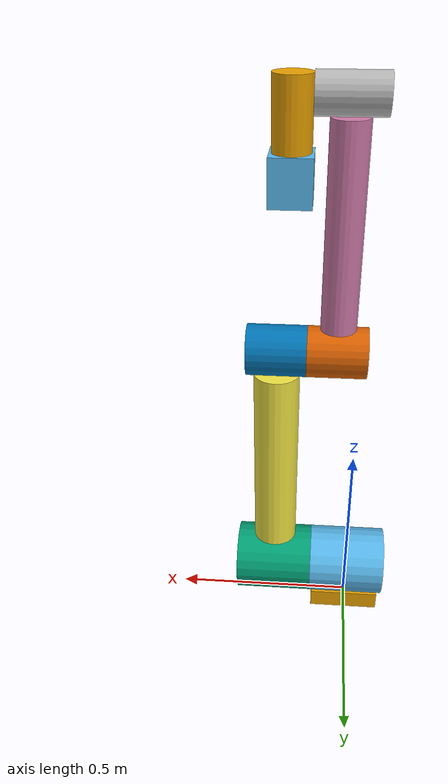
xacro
<?xml version="1.0" ?>

<robot name="myrobot" xmlns:xacro="https://www.ros.org/wiki/xacro">
	<!-- BGN include files -->
	<xacro:include filename="$(find myrobot_description)/urdf/links_joints.xacro"/>
	<xacro:include filename="$(find myrobot_description)/urdf/robot_parameters.xacro"/>
	<xacro:include filename="$(find myrobot_description)/urdf/gazebo.xacro" />
	<!-- END include files -->

	<!-- BGN robot_description -->
	<createBoxLink name="${base}"
					size="${base_size}"
					origin_xyz="0 0 0" origin_rpy="0 0 0"
					mass="${base_mass}" w="${base_width}" d="${base_depth}" h="${base_height}"/>

	<createRevoluteJoint name="${base}__${gG1}"
							axis_xyz="0 0 1" effort_limit="${gG_effort}"
							origin_xyz="0 0 ${base_height/2}" origin_rpy="0 0 0"
							parent="${base}" child="${gG1}" />

	<createCylinderLink name="${gG1}"
						radius="${gG_radius}" length="${gG_length}" mass="${gG_mass}"
						origin_xyz="0 0 ${gG_radius}" origin_rpy="0 1.57075 0" />

	<createRevoluteJoint name="${gG1}__${gG2}"
							axis_xyz="1 0 0" effort_limit="${gG_effort}"
							origin_xyz="${gG_length/2} 0 ${gG_radius}" origin_rpy="0 0 0"
							parent="${gG1}" child="${gG2}" />

	<createCylinderLink name="${gG2}"
						radius="${gG_radius}" length="${gG_length}" mass="${gG_mass}"
						origin_xyz="${gG_length/2} 0 0" origin_rpy="0 1.57075 0" />

	<createFixedJoint name="${gG2}__${uS}"
						origin_xyz="${gG_length/2} 0 ${gG_radius}" origin_rpy="0 0 0"
						parent="${gG2}" child="${uS}" />

	<createCylinderLink name="${uS}"
						radius="${uS_radius}" length="${uS_length}" mass="${uS_mass}"
						origin_xyz="0 0 ${uS_length/2}" origin_rpy="0 0 0" />

	<createFixedJoint name="${uS}__${mG1}"
						origin_xyz="0 0 ${uS_length}" origin_rpy="0 0 0"
						parent="${uS}" child="${mG1}" />

	<createCylinderLink name="${mG1}"
						radius="${mG_radius}" length="${mG_length}" mass="${mG_mass}"
						origin_xyz="0 0 ${mG_radius}" origin_rpy="0 1.57075 0" />

	<createRevoluteJoint name="${mG1}__${mG2}"
							axis_xyz="1 0 0" effort_limit="${mG_effort}"
							origin_xyz="${-mG_length/2} 0 ${mG_radius}" origin_rpy="0 0 0"
							parent="${mG1}" child="${mG2}" />

	<createCylinderLink name="${mG2}"
						radius="${mG_radius}" length="${mG_length}" mass="${mG_mass}"
						origin_xyz="${-mG_length/2} 0 0" origin_rpy="0 1.57075 0" />

	<createRevoluteJoint name="${mG2}__${oS}"
							axis_xyz="0 0 1" effort_limit="${mG_effort}"
							origin_xyz="${-mG_length/2} 0 ${mG_radius}" origin_rpy="0 0 0"
							parent="${mG2}" child="${oS}"/>

	<createCylinderLink name="${oS}"
						radius="${oS_radius}" length="${oS_length}" mass="${oS_mass}"
						origin_xyz="0 0 ${oS_length/2}" origin_rpy="0 0 0" />

	<createFixedJoint name="${oS}__${kG1}"
						origin_xyz="0 0 ${oS_length}" origin_rpy="0 0 0"
						parent="${oS}" child="${kG1}" />

	<createCylinderLink name="${kG1}"
						radius="${kG_radius}" length="${kG_length}" mass="${kG_mass}"
						origin_xyz="0 0 ${kG_radius}" origin_rpy="0 1.57075 0" />

	<createRevoluteJoint name="${kG1}__${kG2}"
							axis_xyz="1 0 0" effort_limit="${kG_effort}"
							origin_xyz="${kG_length/2} 0 ${kG_radius}" origin_rpy="0 0 0"
							parent="${kG1}" child="${kG2}" />

	<createCylinderLink name="${kG2}"
						radius="${kG_radius}" length="${kG_length}" mass="${kG_mass}"
						origin_xyz="${kG_radius} 0 ${-kG_length/4}" origin_rpy="0 0 0" />

	<createRevoluteJoint name="${kG2}__${eE}"
							axis_xyz="0 0 1" effort_limit="${kG_effort}"
							origin_xyz="${kG_radius} 0 ${-kG_length*3/4}" origin_rpy="0 0 0"
							parent="${kG2}" child="${eE}" />

	<createBoxLink name="${eE}"
					size="${eE_size}"
					origin_xyz="0 0 ${-eE_height/2}" origin_rpy="0 0 0"
					mass="${eE_mass}" w="${eE_width}" d="${eE_depth}" h="${eE_height}"/>

	<!-- END robot_description -->

</robot>

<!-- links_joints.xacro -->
<robot name="myrobot" xmlns:xacro="https://www.ros.org/wiki/xacro">

	<xacro:macro name="createBoxLink" params="name size origin_xyz origin_rpy mass w d h">
		<link name="${name}">
			<visual>
				<geometry> <box size="${size}" /> </geometry>
				<origin xyz="${origin_xyz}" rpy="${origin_rpy}" />
			</visual>
			<collision>
				<geometry> <box size="${size}" /> </geometry>
				<origin xyz="${origin_xyz}" rpy="${origin_rpy}" />
			</collision>
			<inertial>
				<mass value="${mass}" />
				<origin xyz="${origin_xyz}" rpy="${origin_rpy}" />
				<xacro:property name="ixx" value="${1/12* mass* (h*h + d*d)}" />
				<xacro:property name="iyy" value="${1/12* mass* (w*w + d*d)}" />
				<xacro:property name="izz" value="${1/12* mass* (w*w + h*h)}" />
				<inertia ixx="${ixx}" ixy="0" ixz="0" iyy="${iyy}" iyz="0" izz="${izz}"/>
			</inertial>
		</link>
	</xacro:macro>

	<xacro:macro name="createCylinderLink" params="name radius length origin_xyz origin_rpy mass">
		<link name="${name}">
			<visual>
				<geometry>
					<cylinder radius="${radius}" length="${length}" />
				</geometry>
				<origin xyz="${origin_xyz}" rpy="${origin_rpy}" />
			</visual>
			<collision>
				<geometry>
					<cylinder radius="${radius}" length="${length}" />
				</geometry>
				<origin xyz="${origin_xyz}" rpy="${origin_rpy}" />
			</collision>
			<inertial>
				<mass value="${mass}" />
				<origin xyz="${origin_xyz}" rpy="${origin_rpy}" />
				<xacro:property name="ixx" value="${1/12*mass* (3*(radius*radius) + length*length)}" />
				<xacro:property name="iyy" value="${1/12*mass* (3*(radius*radius) + length*length)}" />
				<xacro:property name="izz" value="${1/2*mass* radius*radius}" />
				<inertia ixx="${ixx}" ixy="0" ixz="0" iyy="${iyy}" iyz="0" izz="${izz}" />
			</inertial>
		</link>
	</xacro:macro>

	<xacro:macro name="createFixedJoint" params="name origin_xyz origin_rpy parent child">
		<joint name="${name}" type="fixed">
			<origin xyz="${origin_xyz}" rpy="${origin_rpy}"/>
			<parent link="${parent}" />
			<child link="${child}" />
		</joint>
	</xacro:macro>

	<xacro:macro name="createRevoluteJoint" params="name axis_xyz effort_limit origin_xyz origin_rpy parent child">
		<joint name="${name}" type="revolute">
			<axis xyz="${axis_xyz}" />
			<limit effort="${effort_limit}" lower="-3.14" upper="3.14" velocity="0.1"/>
			<origin xyz="${origin_xyz}" rpy="${origin_rpy}" />
			<parent link="${parent}"/>
			<child link="${child}"/>
		</joint>
		<transmission name="trans_${name}">
			<type>transmission_interface/SimpleTransmission</type>
			<joint name="${name}">
				<hardwareInterface>hardware_interface/EffortJointInterface</hardwareInterface>
			</joint>
			<actuator name="motor_${name}">
				<hardwareInterface>hardware_interface/EffortJointInterface</hardwareInterface>
				<mechanicalReduction>1</mechanicalReduction>
			</actuator>
		</transmission>
	</xacro:macro>

</robot>

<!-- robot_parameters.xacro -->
<robot name="myrobot" xmlns:xacro="https://www.ros.org/wiki/xacro">

	<!-- properties of the robot -->

	<xacro:property name="base" value="base_Link" />
	<xacro:property name="base_size" value="0.2 0.1 0.055" />
	<xacro:property name="base_width" value="0.2" />
	<xacro:property name="base_depth" value="0.1" />
	<xacro:property name="base_height" value="0.055" />
	<xacro:property name="base_mass" value="1000" />

	<!-- properties of the big motors/links -->
	<xacro:property name="gG1" value="gG_Rechts" />
	<xacro:property name="gG2" value="gG_Links" />
	<xacro:property name="gG_length" value="0.215" />
	<xacro:property name="gG_radius" value="0.0975" />
	<xacro:property name="gG_effort" value="300" />
	<xacro:property name="gG_mass" value="13" />

	<!-- properties of the middle motors/links -->
	<xacro:property name="mG1" value="mG_Links" />
	<xacro:property name="mG2" value="mG_Rechts" />
	<xacro:property name="mG_length" value="0.152" />
	<xacro:property name="mG_radius" value="0.065" />
	<xacro:property name="mG_effort" value="200" />
	<xacro:property name="mG_mass" value="5.269" />

	<!-- properties of the small motors/links -->
	<xacro:property name="kG1" value="kG_Rechts" />
	<xacro:property name="kG2" value="kG_Links" />
	<xacro:property name="kG_length" value="0.158" />
	<xacro:property name="kG_radius" value="0.045" />
	<xacro:property name="kG_effort" value="100" />
	<xacro:property name="kG_mass" value="2.754" />

	<!-- properties of lower & upper arm and endeffector -->
	<xacro:property name="uS" value="unterSchwinge" />
	<xacro:property name="uS_length" value="0.542" />
	<xacro:property name="uS_radius" value="0.06" />
	<xacro:property name="uS_mass" value="3.395" />

	<xacro:property name="oS" value="oberSchwinge" />
	<xacro:property name="oS_length" value="0.4875" />
	<xacro:property name="oS_radius" value="0.045" />
	<xacro:property name="oS_mass" value="1.62" />

	<xacro:property name="eE" value="endEffektor" />
	<xacro:property name="eE_size" value="0.1 0.1 0.11" />
	<xacro:property name="eE_width" value="0.1" />
	<xacro:property name="eE_depth" value="0.1" />
	<xacro:property name="eE_height" value="0.11" />
	<xacro:property name="eE_mass" value="0.2" />

</robot>
